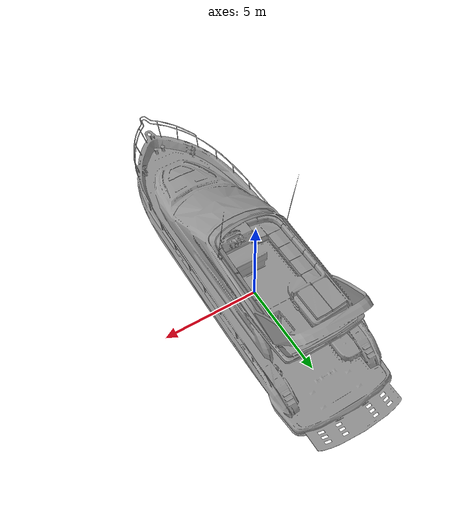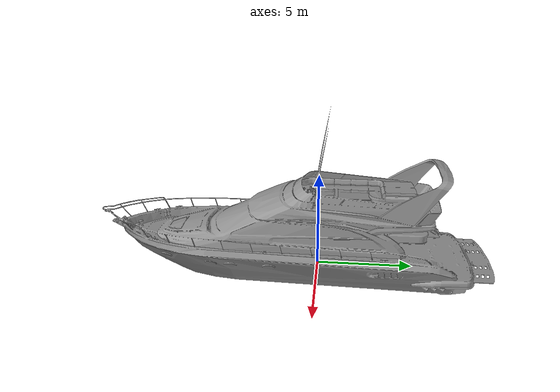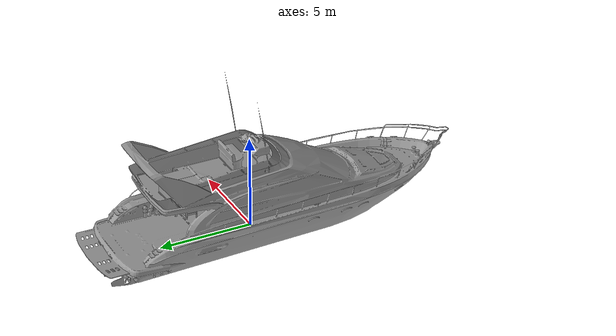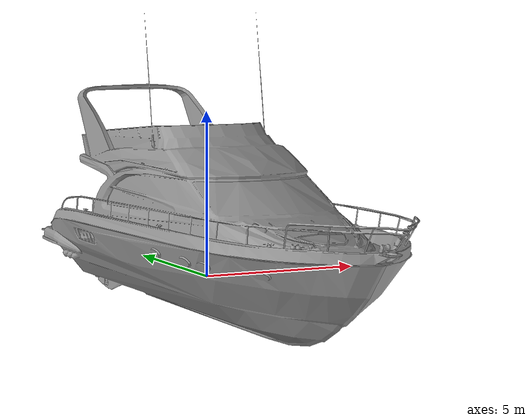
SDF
<?xml version='1.0'?>
<sdf version='1.7'>
  <model name='yacht_1'>
    <static>true</static>
    <link name='link'>
      <visual name='visual'>
        <pose>0 0 0.35 0 0 0</pose>
        <geometry>
          <mesh>
            <uri>/marinero_simulations/models/yacht_1/meshes/Yacht_1.stl</uri>
            <scale>2.2 2.2 2.2</scale>
          </mesh>
        </geometry>
        <material>
          <script>
            <uri>file://media/materials/scripts/gazebo.material</uri>
            <name>Gazebo/Grey</name>
          </script>
        </material>
      </visual>
      <collision name='collision'>
        <pose>0 0 0.35 0 0 0</pose>
        <geometry>
          <mesh>
            <uri>/marinero_simulations/models/yacht_1/meshes/Yacht_1.stl</uri>
            <scale>2.2 2.2 2.2</scale>
          </mesh>
        </geometry>
        <max_contacts>10</max_contacts>
      </collision>
    </link>
  </model>
</sdf>
